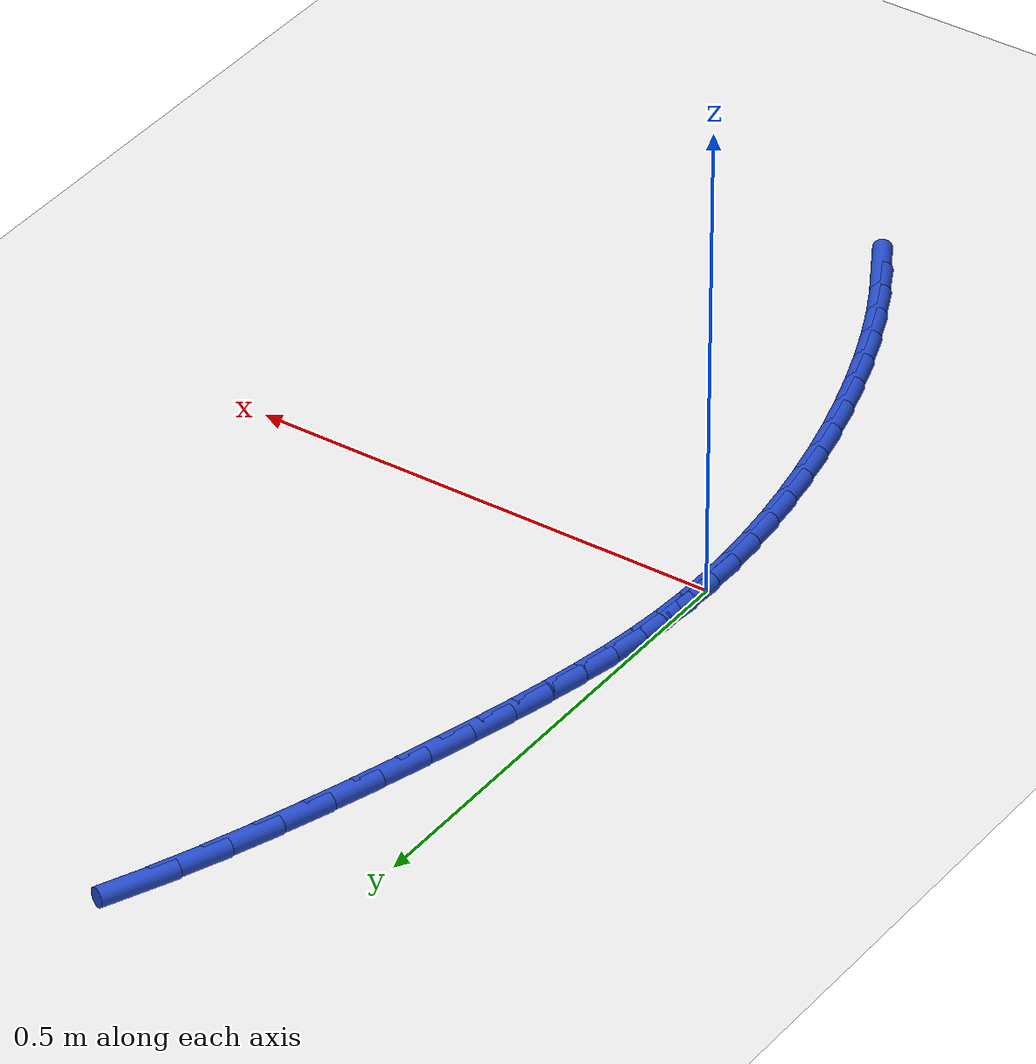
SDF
<sdf version="1.6">
 <world name="default">
  <model name="ground_plane">
   <static>1</static>
   <link name="link">
    <collision name="collision">
     <geometry><plane><normal>0 0 1</normal><size>100 100</size></plane></geometry>
     <surface><friction><ode><mu>100</mu><mu2>50</mu2></ode></friction></surface>
    </collision>
    <visual name="visual">
     <cast_shadows>0</cast_shadows>
     <geometry><plane><normal>0 0 1</normal><size>100 100</size></plane></geometry>
     <material>
      <script><uri>file://media/materials/scripts/gazebo.material</uri><name>Gazebo/WhiteGlow</name></script>
     </material>
    </visual>
   </link>
  </model>
  <model name="line">
   <link name="link_0">
    <pose>-1.8214596497756474e-17 2.7755575615628914e-17 0.01 0 1.57 1.5525167336154178</pose>
    <collision name="collision">
     <geometry><cylinder><radius>0.01</radius><length>0.08</length></cylinder></geometry>
    </collision>
    <visual name="visual">
     <material>
      <script><name>Gazebo/Blue</name><uri>file://media/materials/scripts/gazebo.material</uri></script>
     </material>
     <geometry><cylinder><radius>0.01</radius><length>0.08</length></cylinder></geometry>
    </visual>
   </link>
   <link name="link_1">
    <pose>0.000661402451939472 0.0361785284837836 0.01 0 1.57 1.5084615165804935</pose>
    <collision name="collision">
     <geometry><cylinder><radius>0.01</radius><length>0.08</length></cylinder></geometry>
    </collision>
    <visual name="visual">
     <material>
      <script><name>Gazebo/Blue</name><uri>file://media/materials/scripts/gazebo.material</uri></script>
     </material>
     <geometry><cylinder><radius>0.01</radius><length>0.08</length></cylinder></geometry>
    </visual>
   </link>
   <link name="link_2">
    <pose>0.0028927464432620766 0.07192826730148752 0.01 0 1.57 1.4653621089082032</pose>
    <collision name="collision">
     <geometry><cylinder><radius>0.01</radius><length>0.08</length></cylinder></geometry>
    </collision>
    <visual name="visual">
     <material>
      <script><name>Gazebo/Blue</name><uri>file://media/materials/scripts/gazebo.material</uri></script>
     </material>
     <geometry><cylinder><radius>0.01</radius><length>0.08</length></cylinder></geometry>
    </visual>
   </link>
   <link name="link_3">
    <pose>0.0066811780624508234 0.10772673392677257 0.01 0 1.57 1.4250320973328217</pose>
    <collision name="collision">
     <geometry><cylinder><radius>0.01</radius><length>0.08</length></cylinder></geometry>
    </collision>
    <visual name="visual">
     <material>
      <script><name>Gazebo/Blue</name><uri>file://media/materials/scripts/gazebo.material</uri></script>
     </material>
     <geometry><cylinder><radius>0.01</radius><length>0.08</length></cylinder></geometry>
    </visual>
   </link>
   <link name="link_4">
    <pose>0.012013843397988735 0.14405144583329935 0.01 0 1.57 1.388945505339191</pose>
    <collision name="collision">
     <geometry><cylinder><radius>0.01</radius><length>0.08</length></cylinder></geometry>
    </collision>
    <visual name="visual">
     <material>
      <script><name>Gazebo/Blue</name><uri>file://media/materials/scripts/gazebo.material</uri></script>
     </material>
     <geometry><cylinder><radius>0.01</radius><length>0.08</length></cylinder></geometry>
    </visual>
   </link>
   <link name="link_5">
    <pose>0.018877888538358832 0.18137992049472856 0.01 0 1.57 1.3580728183663326</pose>
    <collision name="collision">
     <geometry><cylinder><radius>0.01</radius><length>0.08</length></cylinder></geometry>
    </collision>
    <visual name="visual">
     <material>
      <script><name>Gazebo/Blue</name><uri>file://media/materials/scripts/gazebo.material</uri></script>
     </material>
     <geometry><cylinder><radius>0.01</radius><length>0.08</length></cylinder></geometry>
    </visual>
   </link>
   <link name="link_6">
    <pose>0.027260459572044142 0.220189675384721 0.01 0 1.57 1.3328455503188137</pose>
    <collision name="collision">
     <geometry><cylinder><radius>0.01</radius><length>0.08</length></cylinder></geometry>
    </collision>
    <visual name="visual">
     <material>
      <script><name>Gazebo/Blue</name><uri>file://media/materials/scripts/gazebo.material</uri></script>
     </material>
     <geometry><cylinder><radius>0.01</radius><length>0.08</length></cylinder></geometry>
    </visual>
   </link>
   <link name="link_7">
    <pose>0.03714870258752768 0.26095822797693724 0.01 0 1.57 1.3132267445108643</pose>
    <collision name="collision">
     <geometry><cylinder><radius>0.01</radius><length>0.08</length></cylinder></geometry>
    </collision>
    <visual name="visual">
     <material>
      <script><name>Gazebo/Blue</name><uri>file://media/materials/scripts/gazebo.material</uri></script>
     </material>
     <geometry><cylinder><radius>0.01</radius><length>0.08</length></cylinder></geometry>
    </visual>
   </link>
   <link name="link_8">
    <pose>0.04852976367329247 0.30416309574503797 0.01 0 1.57 1.298671600332839</pose>
    <collision name="collision">
     <geometry><cylinder><radius>0.01</radius><length>0.08</length></cylinder></geometry>
    </collision>
    <visual name="visual">
     <material>
      <script><name>Gazebo/Blue</name><uri>file://media/materials/scripts/gazebo.material</uri></script>
     </material>
     <geometry><cylinder><radius>0.01</radius><length>0.08</length></cylinder></geometry>
    </visual>
   </link>
   <link name="link_9">
    <pose>0.061389250148750296 0.35024668932478076 0.01 0 1.57 1.2855595644924356</pose>
    <collision name="collision">
     <geometry><cylinder><radius>0.01</radius><length>0.08</length></cylinder></geometry>
    </collision>
    <visual name="visual">
     <material>
      <script><name>Gazebo/Blue</name><uri>file://media/materials/scripts/gazebo.material</uri></script>
     </material>
     <geometry><cylinder><radius>0.01</radius><length>0.08</length></cylinder></geometry>
    </visual>
   </link>
   <link name="link_10">
    <pose>0.07568402391180018 0.3989955958938321 0.01 0 1.57 1.2707426323777362</pose>
    <collision name="collision">
     <geometry><cylinder><radius>0.01</radius><length>0.08</length></cylinder></geometry>
    </collision>
    <visual name="visual">
     <material>
      <script><name>Gazebo/Blue</name><uri>file://media/materials/scripts/gazebo.material</uri></script>
     </material>
     <geometry><cylinder><radius>0.01</radius><length>0.08</length></cylinder></geometry>
    </visual>
   </link>
   <link name="link_11">
    <pose>0.09134547076444016 0.4496151684564415 0.01 0 1.57 1.2536949764877952</pose>
    <collision name="collision">
     <geometry><cylinder><radius>0.01</radius><length>0.08</length></cylinder></geometry>
    </collision>
    <visual name="visual">
     <material>
      <script><name>Gazebo/Blue</name><uri>file://media/materials/scripts/gazebo.material</uri></script>
     </material>
     <geometry><cylinder><radius>0.01</radius><length>0.08</length></cylinder></geometry>
    </visual>
   </link>
   <link name="link_12">
    <pose>0.10830409459419382 0.5012906392404055 0.01 0 1.57 1.233855656656442</pose>
    <collision name="collision">
     <geometry><cylinder><radius>0.01</radius><length>0.08</length></cylinder></geometry>
    </collision>
    <visual name="visual">
     <material>
      <script><name>Gazebo/Blue</name><uri>file://media/materials/scripts/gazebo.material</uri></script>
     </material>
     <geometry><cylinder><radius>0.01</radius><length>0.08</length></cylinder></geometry>
    </visual>
   </link>
   <link name="link_13">
    <pose>0.12649039928858483 0.55320724047352 0.01 0 1.57 1.2104747634968034</pose>
    <collision name="collision">
     <geometry><cylinder><radius>0.01</radius><length>0.08</length></cylinder></geometry>
    </collision>
    <visual name="visual">
     <material>
      <script><name>Gazebo/Blue</name><uri>file://media/materials/scripts/gazebo.material</uri></script>
     </material>
     <geometry><cylinder><radius>0.01</radius><length>0.08</length></cylinder></geometry>
    </visual>
   </link>
   <link name="link_14">
    <pose>0.14583488873513678 0.6045502043835819 0.01 0 1.57 1.1825252440488485</pose>
    <collision name="collision">
     <geometry><cylinder><radius>0.01</radius><length>0.08</length></cylinder></geometry>
    </collision>
    <visual name="visual">
     <material>
      <script><name>Gazebo/Blue</name><uri>file://media/materials/scripts/gazebo.material</uri></script>
     </material>
     <geometry><cylinder><radius>0.01</radius><length>0.08</length></cylinder></geometry>
    </visual>
   </link>
   <link name="link_15">
    <pose>0.1662680668213734 0.6545047631983871 0.01 0 1.57 1.1485652225012108</pose>
    <collision name="collision">
     <geometry><cylinder><radius>0.01</radius><length>0.08</length></cylinder></geometry>
    </collision>
    <visual name="visual">
     <material>
      <script><name>Gazebo/Blue</name><uri>file://media/materials/scripts/gazebo.material</uri></script>
     </material>
     <geometry><cylinder><radius>0.01</radius><length>0.08</length></cylinder></geometry>
    </visual>
   </link>
   <link name="link_176">
    <pose>0.14406339800768378 -0.5248019159678644 0.01 0 1.57 -1.0429116186970668</pose>
    <collision name="collision">
     <geometry><cylinder><radius>0.01</radius><length>0.08</length></cylinder></geometry>
    </collision>
    <visual name="visual">
     <material>
      <script><name>Gazebo/Blue</name><uri>file://media/materials/scripts/gazebo.material</uri></script>
     </material>
     <geometry><cylinder><radius>0.01</radius><length>0.08</length></cylinder></geometry>
    </visual>
   </link>
   <link name="link_177">
    <pose>0.12441375215187367 -0.49110211895222694 0.01 0 1.57 -1.0938164020414116</pose>
    <collision name="collision">
     <geometry><cylinder><radius>0.01</radius><length>0.08</length></cylinder></geometry>
    </collision>
    <visual name="visual">
     <material>
      <script><name>Gazebo/Blue</name><uri>file://media/materials/scripts/gazebo.material</uri></script>
     </material>
     <geometry><cylinder><radius>0.01</radius><length>0.08</length></cylinder></geometry>
    </visual>
   </link>
   <link name="link_178">
    <pose>0.10635736147704798 -0.45616181101048053 0.01 0 1.57 -1.1405392512897188</pose>
    <collision name="collision">
     <geometry><cylinder><radius>0.01</radius><length>0.08</length></cylinder></geometry>
    </collision>
    <visual name="visual">
     <material>
      <script><name>Gazebo/Blue</name><uri>file://media/materials/scripts/gazebo.material</uri></script>
     </material>
     <geometry><cylinder><radius>0.01</radius><length>0.08</length></cylinder></geometry>
    </visual>
   </link>
   <link name="link_179">
    <pose>0.08982810356947235 -0.4201450363150902 0.01 0 1.57 -1.1833861293709056</pose>
    <collision name="collision">
     <geometry><cylinder><radius>0.01</radius><length>0.08</length></cylinder></geometry>
    </collision>
    <visual name="visual">
     <material>
      <script><name>Gazebo/Blue</name><uri>file://media/materials/scripts/gazebo.material</uri></script>
     </material>
     <geometry><cylinder><radius>0.01</radius><length>0.08</length></cylinder></geometry>
    </visual>
   </link>
   <link name="link_180">
    <pose>0.07475985601541148 -0.38321583903851875 0.01 0 1.57 -1.2226719160483372</pose>
    <collision name="collision">
     <geometry><cylinder><radius>0.01</radius><length>0.08</length></cylinder></geometry>
    </collision>
    <visual name="visual">
     <material>
      <script><name>Gazebo/Blue</name><uri>file://media/materials/scripts/gazebo.material</uri></script>
     </material>
     <geometry><cylinder><radius>0.01</radius><length>0.08</length></cylinder></geometry>
    </visual>
   </link>
   <link name="link_181">
    <pose>0.061086496401131174 -0.3455382633532317 0.01 0 1.57 -1.258742675611347</pose>
    <collision name="collision">
     <geometry><cylinder><radius>0.01</radius><length>0.08</length></cylinder></geometry>
    </collision>
    <visual name="visual">
     <material>
      <script><name>Gazebo/Blue</name><uri>file://media/materials/scripts/gazebo.material</uri></script>
     </material>
     <geometry><cylinder><radius>0.01</radius><length>0.08</length></cylinder></geometry>
    </visual>
   </link>
   <link name="link_182">
    <pose>0.04874346622448576 -0.3072763796656478 0.01 0 1.57 -1.2929684444145424</pose>
    <collision name="collision">
     <geometry><cylinder><radius>0.01</radius><length>0.08</length></cylinder></geometry>
    </collision>
    <visual name="visual">
     <material>
      <script><name>Gazebo/Blue</name><uri>file://media/materials/scripts/gazebo.material</uri></script>
     </material>
     <geometry><cylinder><radius>0.01</radius><length>0.08</length></cylinder></geometry>
    </visual>
   </link>
   <link name="link_183">
    <pose>0.03771138410966102 -0.2685950162093487 0.01 0 1.57 -1.326887582125852</pose>
    <collision name="collision">
     <geometry><cylinder><radius>0.01</radius><length>0.08</length></cylinder></geometry>
    </collision>
    <visual name="visual">
     <material>
      <script><name>Gazebo/Blue</name><uri>file://media/materials/scripts/gazebo.material</uri></script>
     </material>
     <geometry><cylinder><radius>0.01</radius><length>0.08</length></cylinder></geometry>
    </visual>
   </link>
   <link name="link_184">
    <pose>0.028021843349181823 -0.2296598562963908 0.01 0 1.57 -1.360914690745308</pose>
    <collision name="collision">
     <geometry><cylinder><radius>0.01</radius><length>0.08</length></cylinder></geometry>
    </collision>
    <visual name="visual">
     <material>
      <script><name>Gazebo/Blue</name><uri>file://media/materials/scripts/gazebo.material</uri></script>
     </material>
     <geometry><cylinder><radius>0.01</radius><length>0.08</length></cylinder></geometry>
    </visual>
   </link>
   <link name="link_185">
    <pose>0.01970916595684172 -0.19063662901197376 0.01 0 1.57 -1.395408424291785</pose>
    <collision name="collision">
     <geometry><cylinder><radius>0.01</radius><length>0.08</length></cylinder></geometry>
    </collision>
    <visual name="visual">
     <material>
      <script><name>Gazebo/Blue</name><uri>file://media/materials/scripts/gazebo.material</uri></script>
     </material>
     <geometry><cylinder><radius>0.01</radius><length>0.08</length></cylinder></geometry>
    </visual>
   </link>
   <link name="link_186">
    <pose>0.012807673946434322 -0.15169106344129843 0.01 0 1.57 -1.4307456363354112</pose>
    <collision name="collision">
     <geometry><cylinder><radius>0.01</radius><length>0.08</length></cylinder></geometry>
    </collision>
    <visual name="visual">
     <material>
      <script><name>Gazebo/Blue</name><uri>file://media/materials/scripts/gazebo.material</uri></script>
     </material>
     <geometry><cylinder><radius>0.01</radius><length>0.08</length></cylinder></geometry>
    </visual>
   </link>
   <link name="link_187">
    <pose>0.007351689331752841 -0.11298888866956289 0.01 0 1.57 -1.4673322112191476</pose>
    <collision name="collision">
     <geometry><cylinder><radius>0.01</radius><length>0.08</length></cylinder></geometry>
    </collision>
    <visual name="visual">
     <material>
      <script><name>Gazebo/Blue</name><uri>file://media/materials/scripts/gazebo.material</uri></script>
     </material>
     <geometry><cylinder><radius>0.01</radius><length>0.08</length></cylinder></geometry>
    </visual>
   </link>
   <link name="link_188">
    <pose>0.003375534126590953 -0.07469583378196806 0.01 0 1.57 -1.5056151746546327</pose>
    <collision name="collision">
     <geometry><cylinder><radius>0.01</radius><length>0.08</length></cylinder></geometry>
    </collision>
    <visual name="visual">
     <material>
      <script><name>Gazebo/Blue</name><uri>file://media/materials/scripts/gazebo.material</uri></script>
     </material>
     <geometry><cylinder><radius>0.01</radius><length>0.08</length></cylinder></geometry>
    </visual>
   </link>
   <link name="link_189">
    <pose>0.0009135303447421559 -0.03697762786371371 0.01 0 1.57 -1.5460964038270208</pose>
    <collision name="collision">
     <geometry><cylinder><radius>0.01</radius><length>0.08</length></cylinder></geometry>
    </collision>
    <visual name="visual">
     <material>
      <script><name>Gazebo/Blue</name><uri>file://media/materials/scripts/gazebo.material</uri></script>
     </material>
     <geometry><cylinder><radius>0.01</radius><length>0.08</length></cylinder></geometry>
    </visual>
   </link>
   <link name="link_190">
    <pose>-3.903127820947816e-17 1.942890293094024e-16 0.01 0 1.57 1.5522445158073799</pose>
    <collision name="collision">
     <geometry><cylinder><radius>0.01</radius><length>0.08</length></cylinder></geometry>
    </collision>
    <visual name="visual">
     <material>
      <script><name>Gazebo/Blue</name><uri>file://media/materials/scripts/gazebo.material</uri></script>
     </material>
     <geometry><cylinder><radius>0.01</radius><length>0.08</length></cylinder></geometry>
    </visual>
   </link>
   <link name="link_191">
    <pose>0.0006692651061578746 0.03607132072397377 0.01 0 1.57 1.5522445158073805</pose>
    <collision name="collision">
     <geometry><cylinder><radius>0.01</radius><length>0.08</length></cylinder></geometry>
    </collision>
    <visual name="visual">
     <material>
      <script><name>Gazebo/Blue</name><uri>file://media/materials/scripts/gazebo.material</uri></script>
     </material>
     <geometry><cylinder><radius>0.01</radius><length>0.08</length></cylinder></geometry>
    </visual>
   </link>
  </model>
 </world>
</sdf>
